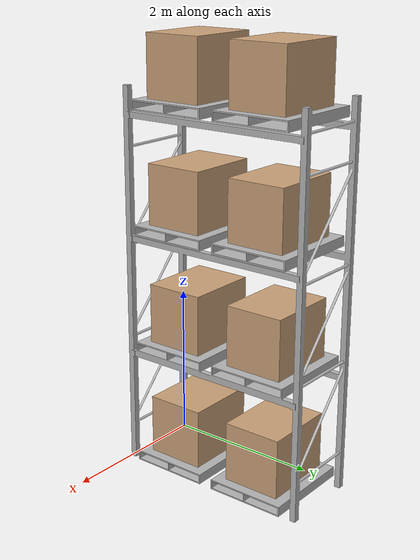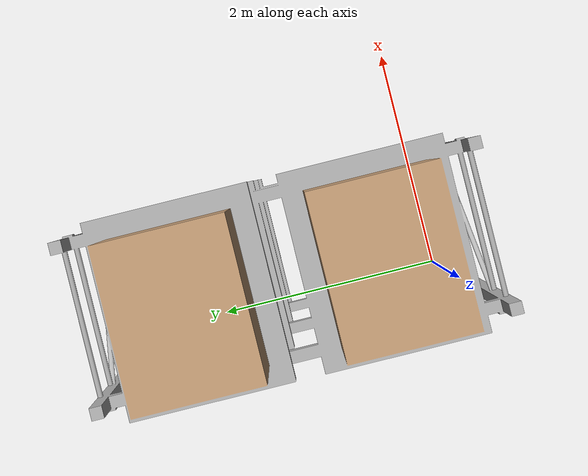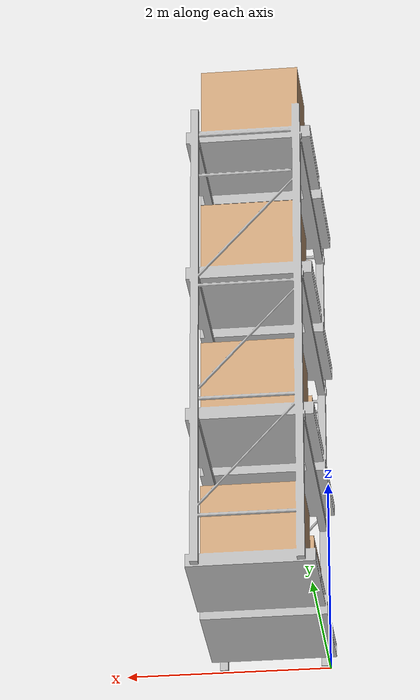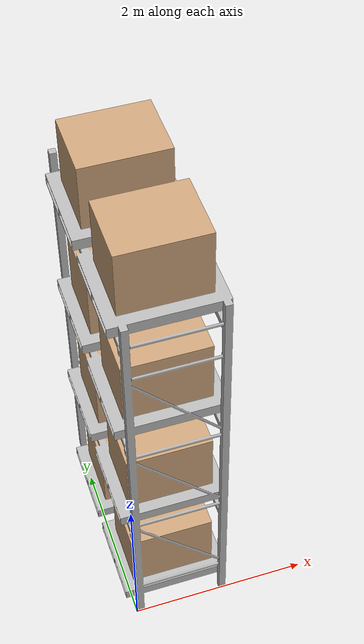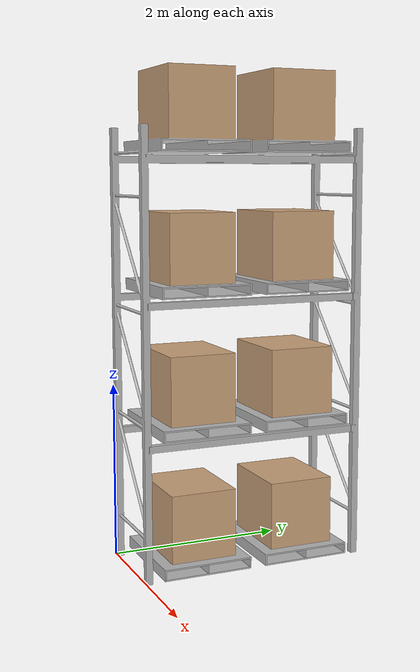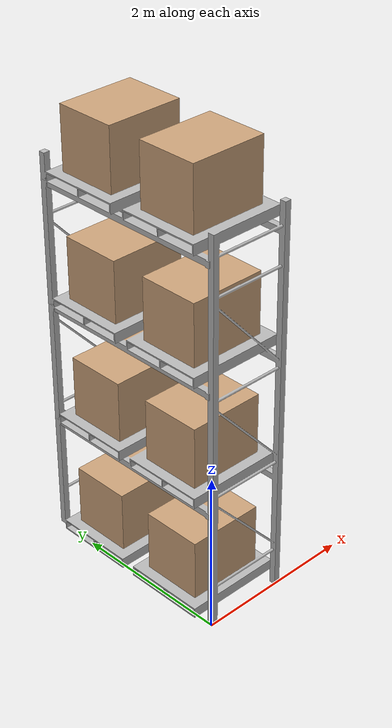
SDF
<?xml version="1.0" ?>
<sdf version="1.5">
  <model name="green_rack">
    <static>true</static>
    <link name="green_rack_link">
      <collision name="collision">
        <geometry>
          <box>
            <size>1 1 1 </size>
          </box>
        </geometry>
      </collision>
      <visual name="green_rack_mesh">
      <cast_shadows>true</cast_shadows>
        <geometry>
          <mesh>
            <uri>model://green_rack/meshes/green_rack.dae</uri>
          </mesh>
        </geometry>
      </visual>
    </link>
  </model>
</sdf>
